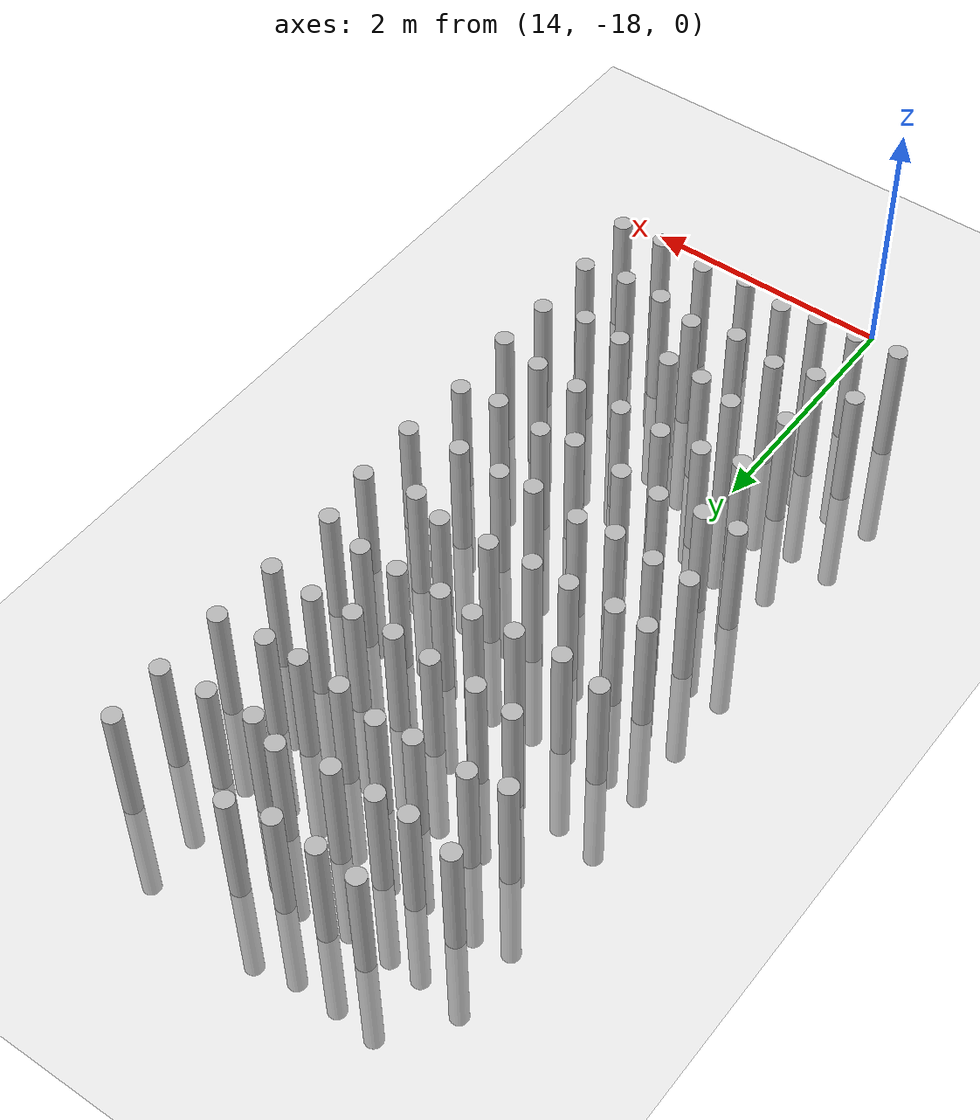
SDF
<sdf version="1.7">
 <world name="farmland_world">
  <model name="ground_plane">
   <static>1</static>
   <link name="link">
    <collision name="collision">
     <geometry><plane><normal>0 0 1</normal><size>40.0 40.0</size></plane></geometry>
     <surface><friction><ode><mu>100</mu><mu2>50</mu2></ode></friction></surface>
    </collision>
    <visual name="visual">
     <cast_shadows>0</cast_shadows>
     <geometry><plane><normal>0 0 1</normal><size>40.0 40.0</size></plane></geometry>
     <material>
      <script><uri>file://media/materials/scripts/gazebo.material</uri><name>Gazebo/Grey</name></script>
     </material>
    </visual>
   </link>
  </model>
  <model name="tree_3_679">
   <static>1</static>
   <link name="link">
    <collision name="collision">
     <geometry><cylinder><radius>0.07</radius><length>2.0</length></cylinder></geometry>
     <surface><friction><ode><mu>100</mu><mu2>50</mu2></ode></friction></surface>
    </collision>
    <visual name="visual">
     <geometry><cylinder><radius>0.07</radius><length>2.0</length></cylinder></geometry>
    </visual>
   </link>
   <pose>13.340808388463973 -11.802308051591254 0 0 0 0</pose>
  </model>
  <model name="tree_3_680">
   <static>1</static>
   <link name="link">
    <collision name="collision">
     <geometry><cylinder><radius>0.07</radius><length>2.0</length></cylinder></geometry>
     <surface><friction><ode><mu>100</mu><mu2>50</mu2></ode></friction></surface>
    </collision>
    <visual name="visual">
     <geometry><cylinder><radius>0.07</radius><length>2.0</length></cylinder></geometry>
    </visual>
   </link>
   <pose>13.346964968816224 -12.384186939239651 0 0 0 0</pose>
  </model>
  <model name="tree_3_682">
   <static>1</static>
   <link name="link">
    <collision name="collision">
     <geometry><cylinder><radius>0.07</radius><length>2.0</length></cylinder></geometry>
     <surface><friction><ode><mu>100</mu><mu2>50</mu2></ode></friction></surface>
    </collision>
    <visual name="visual">
     <geometry><cylinder><radius>0.07</radius><length>2.0</length></cylinder></geometry>
    </visual>
   </link>
   <pose>13.345482359203428 -13.34141882869156 0 0 0 0</pose>
  </model>
  <model name="tree_3_683">
   <static>1</static>
   <link name="link">
    <collision name="collision">
     <geometry><cylinder><radius>0.07</radius><length>2.0</length></cylinder></geometry>
     <surface><friction><ode><mu>100</mu><mu2>50</mu2></ode></friction></surface>
    </collision>
    <visual name="visual">
     <geometry><cylinder><radius>0.07</radius><length>2.0</length></cylinder></geometry>
    </visual>
   </link>
   <pose>13.378544295613926 -13.923046291967678 0 0 0 0</pose>
  </model>
  <model name="tree_3_684">
   <static>1</static>
   <link name="link">
    <collision name="collision">
     <geometry><cylinder><radius>0.07</radius><length>2.0</length></cylinder></geometry>
     <surface><friction><ode><mu>100</mu><mu2>50</mu2></ode></friction></surface>
    </collision>
    <visual name="visual">
     <geometry><cylinder><radius>0.07</radius><length>2.0</length></cylinder></geometry>
    </visual>
   </link>
   <pose>13.375819721077916 -14.408751041805958 0 0 0 0</pose>
  </model>
  <model name="tree_3_685">
   <static>1</static>
   <link name="link">
    <collision name="collision">
     <geometry><cylinder><radius>0.07</radius><length>2.0</length></cylinder></geometry>
     <surface><friction><ode><mu>100</mu><mu2>50</mu2></ode></friction></surface>
    </collision>
    <visual name="visual">
     <geometry><cylinder><radius>0.07</radius><length>2.0</length></cylinder></geometry>
    </visual>
   </link>
   <pose>13.35781908827318 -14.96174279117905 0 0 0 0</pose>
  </model>
  <model name="tree_3_688">
   <static>1</static>
   <link name="link">
    <collision name="collision">
     <geometry><cylinder><radius>0.07</radius><length>2.0</length></cylinder></geometry>
     <surface><friction><ode><mu>100</mu><mu2>50</mu2></ode></friction></surface>
    </collision>
    <visual name="visual">
     <geometry><cylinder><radius>0.07</radius><length>2.0</length></cylinder></geometry>
    </visual>
   </link>
   <pose>13.360110141086356 -16.471997860931683 0 0 0 0</pose>
  </model>
  <model name="tree_3_689">
   <static>1</static>
   <link name="link">
    <collision name="collision">
     <geometry><cylinder><radius>0.07</radius><length>2.0</length></cylinder></geometry>
     <surface><friction><ode><mu>100</mu><mu2>50</mu2></ode></friction></surface>
    </collision>
    <visual name="visual">
     <geometry><cylinder><radius>0.07</radius><length>2.0</length></cylinder></geometry>
    </visual>
   </link>
   <pose>13.344872773263349 -17.044483936957196 0 0 0 0</pose>
  </model>
  <model name="tree_3_708">
   <static>1</static>
   <link name="link">
    <collision name="collision">
     <geometry><cylinder><radius>0.07</radius><length>2.0</length></cylinder></geometry>
     <surface><friction><ode><mu>100</mu><mu2>50</mu2></ode></friction></surface>
    </collision>
    <visual name="visual">
     <geometry><cylinder><radius>0.07</radius><length>2.0</length></cylinder></geometry>
    </visual>
   </link>
   <pose>13.690322395746872 -11.335133299749751 0 0 0 0</pose>
  </model>
  <model name="tree_3_709">
   <static>1</static>
   <link name="link">
    <collision name="collision">
     <geometry><cylinder><radius>0.07</radius><length>2.0</length></cylinder></geometry>
     <surface><friction><ode><mu>100</mu><mu2>50</mu2></ode></friction></surface>
    </collision>
    <visual name="visual">
     <geometry><cylinder><radius>0.07</radius><length>2.0</length></cylinder></geometry>
    </visual>
   </link>
   <pose>13.7145491624177 -11.863503087777305 0 0 0 0</pose>
  </model>
  <model name="tree_3_710">
   <static>1</static>
   <link name="link">
    <collision name="collision">
     <geometry><cylinder><radius>0.07</radius><length>2.0</length></cylinder></geometry>
     <surface><friction><ode><mu>100</mu><mu2>50</mu2></ode></friction></surface>
    </collision>
    <visual name="visual">
     <geometry><cylinder><radius>0.07</radius><length>2.0</length></cylinder></geometry>
    </visual>
   </link>
   <pose>13.625132217552395 -12.32689403428545 0 0 0 0</pose>
  </model>
  <model name="tree_3_711">
   <static>1</static>
   <link name="link">
    <collision name="collision">
     <geometry><cylinder><radius>0.07</radius><length>2.0</length></cylinder></geometry>
     <surface><friction><ode><mu>100</mu><mu2>50</mu2></ode></friction></surface>
    </collision>
    <visual name="visual">
     <geometry><cylinder><radius>0.07</radius><length>2.0</length></cylinder></geometry>
    </visual>
   </link>
   <pose>13.667958246962316 -12.850047787302008 0 0 0 0</pose>
  </model>
  <model name="tree_3_712">
   <static>1</static>
   <link name="link">
    <collision name="collision">
     <geometry><cylinder><radius>0.07</radius><length>2.0</length></cylinder></geometry>
     <surface><friction><ode><mu>100</mu><mu2>50</mu2></ode></friction></surface>
    </collision>
    <visual name="visual">
     <geometry><cylinder><radius>0.07</radius><length>2.0</length></cylinder></geometry>
    </visual>
   </link>
   <pose>13.681311029742494 -13.400819610923499 0 0 0 0</pose>
  </model>
  <model name="tree_3_713">
   <static>1</static>
   <link name="link">
    <collision name="collision">
     <geometry><cylinder><radius>0.07</radius><length>2.0</length></cylinder></geometry>
     <surface><friction><ode><mu>100</mu><mu2>50</mu2></ode></friction></surface>
    </collision>
    <visual name="visual">
     <geometry><cylinder><radius>0.07</radius><length>2.0</length></cylinder></geometry>
    </visual>
   </link>
   <pose>13.639194872709846 -13.9288248203039 0 0 0 0</pose>
  </model>
  <model name="tree_3_714">
   <static>1</static>
   <link name="link">
    <collision name="collision">
     <geometry><cylinder><radius>0.07</radius><length>2.0</length></cylinder></geometry>
     <surface><friction><ode><mu>100</mu><mu2>50</mu2></ode></friction></surface>
    </collision>
    <visual name="visual">
     <geometry><cylinder><radius>0.07</radius><length>2.0</length></cylinder></geometry>
    </visual>
   </link>
   <pose>13.66821683657058 -14.411277963981405 0 0 0 0</pose>
  </model>
  <model name="tree_3_715">
   <static>1</static>
   <link name="link">
    <collision name="collision">
     <geometry><cylinder><radius>0.07</radius><length>2.0</length></cylinder></geometry>
     <surface><friction><ode><mu>100</mu><mu2>50</mu2></ode></friction></surface>
    </collision>
    <visual name="visual">
     <geometry><cylinder><radius>0.07</radius><length>2.0</length></cylinder></geometry>
    </visual>
   </link>
   <pose>13.626857726866666 -14.949296165769415 0 0 0 0</pose>
  </model>
  <model name="tree_3_716">
   <static>1</static>
   <link name="link">
    <collision name="collision">
     <geometry><cylinder><radius>0.07</radius><length>2.0</length></cylinder></geometry>
     <surface><friction><ode><mu>100</mu><mu2>50</mu2></ode></friction></surface>
    </collision>
    <visual name="visual">
     <geometry><cylinder><radius>0.07</radius><length>2.0</length></cylinder></geometry>
    </visual>
   </link>
   <pose>13.661842453812733 -15.484964040059724 0 0 0 0</pose>
  </model>
  <model name="tree_3_717">
   <static>1</static>
   <link name="link">
    <collision name="collision">
     <geometry><cylinder><radius>0.07</radius><length>2.0</length></cylinder></geometry>
     <surface><friction><ode><mu>100</mu><mu2>50</mu2></ode></friction></surface>
    </collision>
    <visual name="visual">
     <geometry><cylinder><radius>0.07</radius><length>2.0</length></cylinder></geometry>
    </visual>
   </link>
   <pose>13.634651554343582 -16.012291647399042 0 0 0 0</pose>
  </model>
  <model name="tree_3_718">
   <static>1</static>
   <link name="link">
    <collision name="collision">
     <geometry><cylinder><radius>0.07</radius><length>2.0</length></cylinder></geometry>
     <surface><friction><ode><mu>100</mu><mu2>50</mu2></ode></friction></surface>
    </collision>
    <visual name="visual">
     <geometry><cylinder><radius>0.07</radius><length>2.0</length></cylinder></geometry>
    </visual>
   </link>
   <pose>13.704191779472701 -16.508927564356725 0 0 0 0</pose>
  </model>
  <model name="tree_3_719">
   <static>1</static>
   <link name="link">
    <collision name="collision">
     <geometry><cylinder><radius>0.07</radius><length>2.0</length></cylinder></geometry>
     <surface><friction><ode><mu>100</mu><mu2>50</mu2></ode></friction></surface>
    </collision>
    <visual name="visual">
     <geometry><cylinder><radius>0.07</radius><length>2.0</length></cylinder></geometry>
    </visual>
   </link>
   <pose>13.674314259004587 -17.012017386490427 0 0 0 0</pose>
  </model>
  <model name="tree_3_738">
   <static>1</static>
   <link name="link">
    <collision name="collision">
     <geometry><cylinder><radius>0.07</radius><length>2.0</length></cylinder></geometry>
     <surface><friction><ode><mu>100</mu><mu2>50</mu2></ode></friction></surface>
    </collision>
    <visual name="visual">
     <geometry><cylinder><radius>0.07</radius><length>2.0</length></cylinder></geometry>
    </visual>
   </link>
   <pose>14.020599243994901 -11.356814597097658 0 0 0 0</pose>
  </model>
  <model name="tree_3_739">
   <static>1</static>
   <link name="link">
    <collision name="collision">
     <geometry><cylinder><radius>0.07</radius><length>2.0</length></cylinder></geometry>
     <surface><friction><ode><mu>100</mu><mu2>50</mu2></ode></friction></surface>
    </collision>
    <visual name="visual">
     <geometry><cylinder><radius>0.07</radius><length>2.0</length></cylinder></geometry>
    </visual>
   </link>
   <pose>13.975164255484843 -11.861452776593293 0 0 0 0</pose>
  </model>
  <model name="tree_3_740">
   <static>1</static>
   <link name="link">
    <collision name="collision">
     <geometry><cylinder><radius>0.07</radius><length>2.0</length></cylinder></geometry>
     <surface><friction><ode><mu>100</mu><mu2>50</mu2></ode></friction></surface>
    </collision>
    <visual name="visual">
     <geometry><cylinder><radius>0.07</radius><length>2.0</length></cylinder></geometry>
    </visual>
   </link>
   <pose>14.04906870758376 -12.327650290366883 0 0 0 0</pose>
  </model>
  <model name="tree_3_741">
   <static>1</static>
   <link name="link">
    <collision name="collision">
     <geometry><cylinder><radius>0.07</radius><length>2.0</length></cylinder></geometry>
     <surface><friction><ode><mu>100</mu><mu2>50</mu2></ode></friction></surface>
    </collision>
    <visual name="visual">
     <geometry><cylinder><radius>0.07</radius><length>2.0</length></cylinder></geometry>
    </visual>
   </link>
   <pose>13.97930550759932 -12.880502851616177 0 0 0 0</pose>
  </model>
  <model name="tree_3_742">
   <static>1</static>
   <link name="link">
    <collision name="collision">
     <geometry><cylinder><radius>0.07</radius><length>2.0</length></cylinder></geometry>
     <surface><friction><ode><mu>100</mu><mu2>50</mu2></ode></friction></surface>
    </collision>
    <visual name="visual">
     <geometry><cylinder><radius>0.07</radius><length>2.0</length></cylinder></geometry>
    </visual>
   </link>
   <pose>14.044277784249973 -13.376284610547915 0 0 0 0</pose>
  </model>
  <model name="tree_3_743">
   <static>1</static>
   <link name="link">
    <collision name="collision">
     <geometry><cylinder><radius>0.07</radius><length>2.0</length></cylinder></geometry>
     <surface><friction><ode><mu>100</mu><mu2>50</mu2></ode></friction></surface>
    </collision>
    <visual name="visual">
     <geometry><cylinder><radius>0.07</radius><length>2.0</length></cylinder></geometry>
    </visual>
   </link>
   <pose>13.997188507418489 -13.912777206543414 0 0 0 0</pose>
  </model>
  <model name="tree_3_744">
   <static>1</static>
   <link name="link">
    <collision name="collision">
     <geometry><cylinder><radius>0.07</radius><length>2.0</length></cylinder></geometry>
     <surface><friction><ode><mu>100</mu><mu2>50</mu2></ode></friction></surface>
    </collision>
    <visual name="visual">
     <geometry><cylinder><radius>0.07</radius><length>2.0</length></cylinder></geometry>
    </visual>
   </link>
   <pose>14.000015403870878 -14.447831501928562 0 0 0 0</pose>
  </model>
  <model name="tree_3_745">
   <static>1</static>
   <link name="link">
    <collision name="collision">
     <geometry><cylinder><radius>0.07</radius><length>2.0</length></cylinder></geometry>
     <surface><friction><ode><mu>100</mu><mu2>50</mu2></ode></friction></surface>
    </collision>
    <visual name="visual">
     <geometry><cylinder><radius>0.07</radius><length>2.0</length></cylinder></geometry>
    </visual>
   </link>
   <pose>13.962936307197586 -14.906926339266613 0 0 0 0</pose>
  </model>
  <model name="tree_3_746">
   <static>1</static>
   <link name="link">
    <collision name="collision">
     <geometry><cylinder><radius>0.07</radius><length>2.0</length></cylinder></geometry>
     <surface><friction><ode><mu>100</mu><mu2>50</mu2></ode></friction></surface>
    </collision>
    <visual name="visual">
     <geometry><cylinder><radius>0.07</radius><length>2.0</length></cylinder></geometry>
    </visual>
   </link>
   <pose>13.9658091526255 -15.43068547409144 0 0 0 0</pose>
  </model>
  <model name="tree_3_747">
   <static>1</static>
   <link name="link">
    <collision name="collision">
     <geometry><cylinder><radius>0.07</radius><length>2.0</length></cylinder></geometry>
     <surface><friction><ode><mu>100</mu><mu2>50</mu2></ode></friction></surface>
    </collision>
    <visual name="visual">
     <geometry><cylinder><radius>0.07</radius><length>2.0</length></cylinder></geometry>
    </visual>
   </link>
   <pose>14.046832721232201 -15.929247633756455 0 0 0 0</pose>
  </model>
  <model name="tree_3_748">
   <static>1</static>
   <link name="link">
    <collision name="collision">
     <geometry><cylinder><radius>0.07</radius><length>2.0</length></cylinder></geometry>
     <surface><friction><ode><mu>100</mu><mu2>50</mu2></ode></friction></surface>
    </collision>
    <visual name="visual">
     <geometry><cylinder><radius>0.07</radius><length>2.0</length></cylinder></geometry>
    </visual>
   </link>
   <pose>14.010752984765315 -16.4344264980234 0 0 0 0</pose>
  </model>
  <model name="tree_3_749">
   <static>1</static>
   <link name="link">
    <collision name="collision">
     <geometry><cylinder><radius>0.07</radius><length>2.0</length></cylinder></geometry>
     <surface><friction><ode><mu>100</mu><mu2>50</mu2></ode></friction></surface>
    </collision>
    <visual name="visual">
     <geometry><cylinder><radius>0.07</radius><length>2.0</length></cylinder></geometry>
    </visual>
   </link>
   <pose>13.99368294256494 -17.002265579366224 0 0 0 0</pose>
  </model>
  <model name="tree_3_768">
   <static>1</static>
   <link name="link">
    <collision name="collision">
     <geometry><cylinder><radius>0.07</radius><length>2.0</length></cylinder></geometry>
     <surface><friction><ode><mu>100</mu><mu2>50</mu2></ode></friction></surface>
    </collision>
    <visual name="visual">
     <geometry><cylinder><radius>0.07</radius><length>2.0</length></cylinder></geometry>
    </visual>
   </link>
   <pose>14.368891126838118 -11.35951530188054 0 0 0 0</pose>
  </model>
  <model name="tree_3_769">
   <static>1</static>
   <link name="link">
    <collision name="collision">
     <geometry><cylinder><radius>0.07</radius><length>2.0</length></cylinder></geometry>
     <surface><friction><ode><mu>100</mu><mu2>50</mu2></ode></friction></surface>
    </collision>
    <visual name="visual">
     <geometry><cylinder><radius>0.07</radius><length>2.0</length></cylinder></geometry>
    </visual>
   </link>
   <pose>14.318561382880015 -11.854351910925638 0 0 0 0</pose>
  </model>
  <model name="tree_3_770">
   <static>1</static>
   <link name="link">
    <collision name="collision">
     <geometry><cylinder><radius>0.07</radius><length>2.0</length></cylinder></geometry>
     <surface><friction><ode><mu>100</mu><mu2>50</mu2></ode></friction></surface>
    </collision>
    <visual name="visual">
     <geometry><cylinder><radius>0.07</radius><length>2.0</length></cylinder></geometry>
    </visual>
   </link>
   <pose>14.330449484726984 -12.303503526698902 0 0 0 0</pose>
  </model>
  <model name="tree_3_771">
   <static>1</static>
   <link name="link">
    <collision name="collision">
     <geometry><cylinder><radius>0.07</radius><length>2.0</length></cylinder></geometry>
     <surface><friction><ode><mu>100</mu><mu2>50</mu2></ode></friction></surface>
    </collision>
    <visual name="visual">
     <geometry><cylinder><radius>0.07</radius><length>2.0</length></cylinder></geometry>
    </visual>
   </link>
   <pose>14.348545516643421 -12.882606116251186 0 0 0 0</pose>
  </model>
  <model name="tree_3_772">
   <static>1</static>
   <link name="link">
    <collision name="collision">
     <geometry><cylinder><radius>0.07</radius><length>2.0</length></cylinder></geometry>
     <surface><friction><ode><mu>100</mu><mu2>50</mu2></ode></friction></surface>
    </collision>
    <visual name="visual">
     <geometry><cylinder><radius>0.07</radius><length>2.0</length></cylinder></geometry>
    </visual>
   </link>
   <pose>14.355555445631856 -13.336850170649704 0 0 0 0</pose>
  </model>
  <model name="tree_3_773">
   <static>1</static>
   <link name="link">
    <collision name="collision">
     <geometry><cylinder><radius>0.07</radius><length>2.0</length></cylinder></geometry>
     <surface><friction><ode><mu>100</mu><mu2>50</mu2></ode></friction></surface>
    </collision>
    <visual name="visual">
     <geometry><cylinder><radius>0.07</radius><length>2.0</length></cylinder></geometry>
    </visual>
   </link>
   <pose>14.294242566939918 -13.911809675395093 0 0 0 0</pose>
  </model>
  <model name="tree_3_774">
   <static>1</static>
   <link name="link">
    <collision name="collision">
     <geometry><cylinder><radius>0.07</radius><length>2.0</length></cylinder></geometry>
     <surface><friction><ode><mu>100</mu><mu2>50</mu2></ode></friction></surface>
    </collision>
    <visual name="visual">
     <geometry><cylinder><radius>0.07</radius><length>2.0</length></cylinder></geometry>
    </visual>
   </link>
   <pose>14.286333727072366 -14.4107367613939 0 0 0 0</pose>
  </model>
  <model name="tree_3_775">
   <static>1</static>
   <link name="link">
    <collision name="collision">
     <geometry><cylinder><radius>0.07</radius><length>2.0</length></cylinder></geometry>
     <surface><friction><ode><mu>100</mu><mu2>50</mu2></ode></friction></surface>
    </collision>
    <visual name="visual">
     <geometry><cylinder><radius>0.07</radius><length>2.0</length></cylinder></geometry>
    </visual>
   </link>
   <pose>14.285729926156298 -14.927197109347155 0 0 0 0</pose>
  </model>
  <model name="tree_3_776">
   <static>1</static>
   <link name="link">
    <collision name="collision">
     <geometry><cylinder><radius>0.07</radius><length>2.0</length></cylinder></geometry>
     <surface><friction><ode><mu>100</mu><mu2>50</mu2></ode></friction></surface>
    </collision>
    <visual name="visual">
     <geometry><cylinder><radius>0.07</radius><length>2.0</length></cylinder></geometry>
    </visual>
   </link>
   <pose>14.284523236771356 -15.402466547197408 0 0 0 0</pose>
  </model>
  <model name="tree_3_777">
   <static>1</static>
   <link name="link">
    <collision name="collision">
     <geometry><cylinder><radius>0.07</radius><length>2.0</length></cylinder></geometry>
     <surface><friction><ode><mu>100</mu><mu2>50</mu2></ode></friction></surface>
    </collision>
    <visual name="visual">
     <geometry><cylinder><radius>0.07</radius><length>2.0</length></cylinder></geometry>
    </visual>
   </link>
   <pose>14.342697768522621 -16.002111434990095 0 0 0 0</pose>
  </model>
  <model name="tree_3_778">
   <static>1</static>
   <link name="link">
    <collision name="collision">
     <geometry><cylinder><radius>0.07</radius><length>2.0</length></cylinder></geometry>
     <surface><friction><ode><mu>100</mu><mu2>50</mu2></ode></friction></surface>
    </collision>
    <visual name="visual">
     <geometry><cylinder><radius>0.07</radius><length>2.0</length></cylinder></geometry>
    </visual>
   </link>
   <pose>14.375083099786865 -16.512317901181483 0 0 0 0</pose>
  </model>
  <model name="tree_3_779">
   <static>1</static>
   <link name="link">
    <collision name="collision">
     <geometry><cylinder><radius>0.07</radius><length>2.0</length></cylinder></geometry>
     <surface><friction><ode><mu>100</mu><mu2>50</mu2></ode></friction></surface>
    </collision>
    <visual name="visual">
     <geometry><cylinder><radius>0.07</radius><length>2.0</length></cylinder></geometry>
    </visual>
   </link>
   <pose>14.2800741925875 -16.960295078237614 0 0 0 0</pose>
  </model>
  <model name="tree_3_798">
   <static>1</static>
   <link name="link">
    <collision name="collision">
     <geometry><cylinder><radius>0.07</radius><length>2.0</length></cylinder></geometry>
     <surface><friction><ode><mu>100</mu><mu2>50</mu2></ode></friction></surface>
    </collision>
    <visual name="visual">
     <geometry><cylinder><radius>0.07</radius><length>2.0</length></cylinder></geometry>
    </visual>
   </link>
   <pose>14.68154279527723 -11.281733801631614 0 0 0 0</pose>
  </model>
  <model name="tree_3_799">
   <static>1</static>
   <link name="link">
    <collision name="collision">
     <geometry><cylinder><radius>0.07</radius><length>2.0</length></cylinder></geometry>
     <surface><friction><ode><mu>100</mu><mu2>50</mu2></ode></friction></surface>
    </collision>
    <visual name="visual">
     <geometry><cylinder><radius>0.07</radius><length>2.0</length></cylinder></geometry>
    </visual>
   </link>
   <pose>14.7075414646448 -11.784966463638641 0 0 0 0</pose>
  </model>
  <model name="tree_3_800">
   <static>1</static>
   <link name="link">
    <collision name="collision">
     <geometry><cylinder><radius>0.07</radius><length>2.0</length></cylinder></geometry>
     <surface><friction><ode><mu>100</mu><mu2>50</mu2></ode></friction></surface>
    </collision>
    <visual name="visual">
     <geometry><cylinder><radius>0.07</radius><length>2.0</length></cylinder></geometry>
    </visual>
   </link>
   <pose>14.676019323064615 -12.369868720114962 0 0 0 0</pose>
  </model>
  <model name="tree_3_801">
   <static>1</static>
   <link name="link">
    <collision name="collision">
     <geometry><cylinder><radius>0.07</radius><length>2.0</length></cylinder></geometry>
     <surface><friction><ode><mu>100</mu><mu2>50</mu2></ode></friction></surface>
    </collision>
    <visual name="visual">
     <geometry><cylinder><radius>0.07</radius><length>2.0</length></cylinder></geometry>
    </visual>
   </link>
   <pose>14.667202198646908 -12.906893167900634 0 0 0 0</pose>
  </model>
  <model name="tree_3_802">
   <static>1</static>
   <link name="link">
    <collision name="collision">
     <geometry><cylinder><radius>0.07</radius><length>2.0</length></cylinder></geometry>
     <surface><friction><ode><mu>100</mu><mu2>50</mu2></ode></friction></surface>
    </collision>
    <visual name="visual">
     <geometry><cylinder><radius>0.07</radius><length>2.0</length></cylinder></geometry>
    </visual>
   </link>
   <pose>14.632041613340634 -13.355191984838271 0 0 0 0</pose>
  </model>
  <model name="tree_3_803">
   <static>1</static>
   <link name="link">
    <collision name="collision">
     <geometry><cylinder><radius>0.07</radius><length>2.0</length></cylinder></geometry>
     <surface><friction><ode><mu>100</mu><mu2>50</mu2></ode></friction></surface>
    </collision>
    <visual name="visual">
     <geometry><cylinder><radius>0.07</radius><length>2.0</length></cylinder></geometry>
    </visual>
   </link>
   <pose>14.632229987834856 -13.877326595204476 0 0 0 0</pose>
  </model>
  <model name="tree_3_804">
   <static>1</static>
   <link name="link">
    <collision name="collision">
     <geometry><cylinder><radius>0.07</radius><length>2.0</length></cylinder></geometry>
     <surface><friction><ode><mu>100</mu><mu2>50</mu2></ode></friction></surface>
    </collision>
    <visual name="visual">
     <geometry><cylinder><radius>0.07</radius><length>2.0</length></cylinder></geometry>
    </visual>
   </link>
   <pose>14.684870878377028 -14.456297393006867 0 0 0 0</pose>
  </model>
  <model name="tree_3_805">
   <static>1</static>
   <link name="link">
    <collision name="collision">
     <geometry><cylinder><radius>0.07</radius><length>2.0</length></cylinder></geometry>
     <surface><friction><ode><mu>100</mu><mu2>50</mu2></ode></friction></surface>
    </collision>
    <visual name="visual">
     <geometry><cylinder><radius>0.07</radius><length>2.0</length></cylinder></geometry>
    </visual>
   </link>
   <pose>14.70963364553053 -14.974350861895728 0 0 0 0</pose>
  </model>
  <model name="tree_3_806">
   <static>1</static>
   <link name="link">
    <collision name="collision">
     <geometry><cylinder><radius>0.07</radius><length>2.0</length></cylinder></geometry>
     <surface><friction><ode><mu>100</mu><mu2>50</mu2></ode></friction></surface>
    </collision>
    <visual name="visual">
     <geometry><cylinder><radius>0.07</radius><length>2.0</length></cylinder></geometry>
    </visual>
   </link>
   <pose>14.632824371738865 -15.418738043325 0 0 0 0</pose>
  </model>
  <model name="tree_3_807">
   <static>1</static>
   <link name="link">
    <collision name="collision">
     <geometry><cylinder><radius>0.07</radius><length>2.0</length></cylinder></geometry>
     <surface><friction><ode><mu>100</mu><mu2>50</mu2></ode></friction></surface>
    </collision>
    <visual name="visual">
     <geometry><cylinder><radius>0.07</radius><length>2.0</length></cylinder></geometry>
    </visual>
   </link>
   <pose>14.631625083376306 -16.01544498557388 0 0 0 0</pose>
  </model>
  <model name="tree_3_808">
   <static>1</static>
   <link name="link">
    <collision name="collision">
     <geometry><cylinder><radius>0.07</radius><length>2.0</length></cylinder></geometry>
     <surface><friction><ode><mu>100</mu><mu2>50</mu2></ode></friction></surface>
    </collision>
    <visual name="visual">
     <geometry><cylinder><radius>0.07</radius><length>2.0</length></cylinder></geometry>
    </visual>
   </link>
   <pose>14.717187148351853 -16.435260349926754 0 0 0 0</pose>
  </model>
  <model name="tree_3_809">
   <static>1</static>
   <link name="link">
    <collision name="collision">
     <geometry><cylinder><radius>0.07</radius><length>2.0</length></cylinder></geometry>
     <surface><friction><ode><mu>100</mu><mu2>50</mu2></ode></friction></surface>
    </collision>
    <visual name="visual">
     <geometry><cylinder><radius>0.07</radius><length>2.0</length></cylinder></geometry>
    </visual>
   </link>
   <pose>14.628983852179028 -17.029159808631714 0 0 0 0</pose>
  </model>
  <model name="tree_3_829">
   <static>1</static>
   <link name="link">
    <collision name="collision">
     <geometry><cylinder><radius>0.07</radius><length>2.0</length></cylinder></geometry>
     <surface><friction><ode><mu>100</mu><mu2>50</mu2></ode></friction></surface>
    </collision>
    <visual name="visual">
     <geometry><cylinder><radius>0.07</radius><length>2.0</length></cylinder></geometry>
    </visual>
   </link>
   <pose>14.955673507575925 -11.867409691922742 0 0 0 0</pose>
  </model>
  <model name="tree_3_830">
   <static>1</static>
   <link name="link">
    <collision name="collision">
     <geometry><cylinder><radius>0.07</radius><length>2.0</length></cylinder></geometry>
     <surface><friction><ode><mu>100</mu><mu2>50</mu2></ode></friction></surface>
    </collision>
    <visual name="visual">
     <geometry><cylinder><radius>0.07</radius><length>2.0</length></cylinder></geometry>
    </visual>
   </link>
   <pose>15.024986284177967 -12.384447781668749 0 0 0 0</pose>
  </model>
  <model name="tree_3_831">
   <static>1</static>
   <link name="link">
    <collision name="collision">
     <geometry><cylinder><radius>0.07</radius><length>2.0</length></cylinder></geometry>
     <surface><friction><ode><mu>100</mu><mu2>50</mu2></ode></friction></surface>
    </collision>
    <visual name="visual">
     <geometry><cylinder><radius>0.07</radius><length>2.0</length></cylinder></geometry>
    </visual>
   </link>
   <pose>14.98161138716735 -12.87733817100035 0 0 0 0</pose>
  </model>
  <model name="tree_3_832">
   <static>1</static>
   <link name="link">
    <collision name="collision">
     <geometry><cylinder><radius>0.07</radius><length>2.0</length></cylinder></geometry>
     <surface><friction><ode><mu>100</mu><mu2>50</mu2></ode></friction></surface>
    </collision>
    <visual name="visual">
     <geometry><cylinder><radius>0.07</radius><length>2.0</length></cylinder></geometry>
    </visual>
   </link>
   <pose>14.97951014678766 -13.336292956078381 0 0 0 0</pose>
  </model>
  <model name="tree_3_833">
   <static>1</static>
   <link name="link">
    <collision name="collision">
     <geometry><cylinder><radius>0.07</radius><length>2.0</length></cylinder></geometry>
     <surface><friction><ode><mu>100</mu><mu2>50</mu2></ode></friction></surface>
    </collision>
    <visual name="visual">
     <geometry><cylinder><radius>0.07</radius><length>2.0</length></cylinder></geometry>
    </visual>
   </link>
   <pose>15.023872415907594 -13.85260018142556 0 0 0 0</pose>
  </model>
  <model name="tree_3_834">
   <static>1</static>
   <link name="link">
    <collision name="collision">
     <geometry><cylinder><radius>0.07</radius><length>2.0</length></cylinder></geometry>
     <surface><friction><ode><mu>100</mu><mu2>50</mu2></ode></friction></surface>
    </collision>
    <visual name="visual">
     <geometry><cylinder><radius>0.07</radius><length>2.0</length></cylinder></geometry>
    </visual>
   </link>
   <pose>14.955012169996442 -14.432064671946074 0 0 0 0</pose>
  </model>
  <model name="tree_3_835">
   <static>1</static>
   <link name="link">
    <collision name="collision">
     <geometry><cylinder><radius>0.07</radius><length>2.0</length></cylinder></geometry>
     <surface><friction><ode><mu>100</mu><mu2>50</mu2></ode></friction></surface>
    </collision>
    <visual name="visual">
     <geometry><cylinder><radius>0.07</radius><length>2.0</length></cylinder></geometry>
    </visual>
   </link>
   <pose>14.964530618583046 -14.916525232752548 0 0 0 0</pose>
  </model>
  <model name="tree_3_836">
   <static>1</static>
   <link name="link">
    <collision name="collision">
     <geometry><cylinder><radius>0.07</radius><length>2.0</length></cylinder></geometry>
     <surface><friction><ode><mu>100</mu><mu2>50</mu2></ode></friction></surface>
    </collision>
    <visual name="visual">
     <geometry><cylinder><radius>0.07</radius><length>2.0</length></cylinder></geometry>
    </visual>
   </link>
   <pose>15.00336407563967 -15.405099336814684 0 0 0 0</pose>
  </model>
  <model name="tree_3_837">
   <static>1</static>
   <link name="link">
    <collision name="collision">
     <geometry><cylinder><radius>0.07</radius><length>2.0</length></cylinder></geometry>
     <surface><friction><ode><mu>100</mu><mu2>50</mu2></ode></friction></surface>
    </collision>
    <visual name="visual">
     <geometry><cylinder><radius>0.07</radius><length>2.0</length></cylinder></geometry>
    </visual>
   </link>
   <pose>15.033102597328567 -15.982076280014134 0 0 0 0</pose>
  </model>
  <model name="tree_3_838">
   <static>1</static>
   <link name="link">
    <collision name="collision">
     <geometry><cylinder><radius>0.07</radius><length>2.0</length></cylinder></geometry>
     <surface><friction><ode><mu>100</mu><mu2>50</mu2></ode></friction></surface>
    </collision>
    <visual name="visual">
     <geometry><cylinder><radius>0.07</radius><length>2.0</length></cylinder></geometry>
    </visual>
   </link>
   <pose>15.042135221845049 -16.520227377193745 0 0 0 0</pose>
  </model>
  <model name="tree_3_839">
   <static>1</static>
   <link name="link">
    <collision name="collision">
     <geometry><cylinder><radius>0.07</radius><length>2.0</length></cylinder></geometry>
     <surface><friction><ode><mu>100</mu><mu2>50</mu2></ode></friction></surface>
    </collision>
    <visual name="visual">
     <geometry><cylinder><radius>0.07</radius><length>2.0</length></cylinder></geometry>
    </visual>
   </link>
   <pose>14.974447104708593 -16.97454026586856 0 0 0 0</pose>
  </model>
  <model name="tree_3_859">
   <static>1</static>
   <link name="link">
    <collision name="collision">
     <geometry><cylinder><radius>0.07</radius><length>2.0</length></cylinder></geometry>
     <surface><friction><ode><mu>100</mu><mu2>50</mu2></ode></friction></surface>
    </collision>
    <visual name="visual">
     <geometry><cylinder><radius>0.07</radius><length>2.0</length></cylinder></geometry>
    </visual>
   </link>
   <pose>15.324470136267706 -11.840376913350616 0 0 0 0</pose>
  </model>
  <model name="tree_3_860">
   <static>1</static>
   <link name="link">
    <collision name="collision">
     <geometry><cylinder><radius>0.07</radius><length>2.0</length></cylinder></geometry>
     <surface><friction><ode><mu>100</mu><mu2>50</mu2></ode></friction></surface>
    </collision>
    <visual name="visual">
     <geometry><cylinder><radius>0.07</radius><length>2.0</length></cylinder></geometry>
    </visual>
   </link>
   <pose>15.305227363232508 -12.383654506984925 0 0 0 0</pose>
  </model>
  <model name="tree_3_861">
   <static>1</static>
   <link name="link">
    <collision name="collision">
     <geometry><cylinder><radius>0.07</radius><length>2.0</length></cylinder></geometry>
     <surface><friction><ode><mu>100</mu><mu2>50</mu2></ode></friction></surface>
    </collision>
    <visual name="visual">
     <geometry><cylinder><radius>0.07</radius><length>2.0</length></cylinder></geometry>
    </visual>
   </link>
   <pose>15.295270767223345 -12.838839881775229 0 0 0 0</pose>
  </model>
  <model name="tree_3_862">
   <static>1</static>
   <link name="link">
    <collision name="collision">
     <geometry><cylinder><radius>0.07</radius><length>2.0</length></cylinder></geometry>
     <surface><friction><ode><mu>100</mu><mu2>50</mu2></ode></friction></surface>
    </collision>
    <visual name="visual">
     <geometry><cylinder><radius>0.07</radius><length>2.0</length></cylinder></geometry>
    </visual>
   </link>
   <pose>15.29292843470509 -13.34036117969916 0 0 0 0</pose>
  </model>
  <model name="tree_3_863">
   <static>1</static>
   <link name="link">
    <collision name="collision">
     <geometry><cylinder><radius>0.07</radius><length>2.0</length></cylinder></geometry>
     <surface><friction><ode><mu>100</mu><mu2>50</mu2></ode></friction></surface>
    </collision>
    <visual name="visual">
     <geometry><cylinder><radius>0.07</radius><length>2.0</length></cylinder></geometry>
    </visual>
   </link>
   <pose>15.293223870591184 -13.941431512266671 0 0 0 0</pose>
  </model>
  <model name="tree_3_864">
   <static>1</static>
   <link name="link">
    <collision name="collision">
     <geometry><cylinder><radius>0.07</radius><length>2.0</length></cylinder></geometry>
     <surface><friction><ode><mu>100</mu><mu2>50</mu2></ode></friction></surface>
    </collision>
    <visual name="visual">
     <geometry><cylinder><radius>0.07</radius><length>2.0</length></cylinder></geometry>
    </visual>
   </link>
   <pose>15.31098173598636 -14.443666814655122 0 0 0 0</pose>
  </model>
  <model name="tree_3_865">
   <static>1</static>
   <link name="link">
    <collision name="collision">
     <geometry><cylinder><radius>0.07</radius><length>2.0</length></cylinder></geometry>
     <surface><friction><ode><mu>100</mu><mu2>50</mu2></ode></friction></surface>
    </collision>
    <visual name="visual">
     <geometry><cylinder><radius>0.07</radius><length>2.0</length></cylinder></geometry>
    </visual>
   </link>
   <pose>15.361555746575434 -14.964316889736157 0 0 0 0</pose>
  </model>
  <model name="tree_3_866">
   <static>1</static>
   <link name="link">
    <collision name="collision">
     <geometry><cylinder><radius>0.07</radius><length>2.0</length></cylinder></geometry>
     <surface><friction><ode><mu>100</mu><mu2>50</mu2></ode></friction></surface>
    </collision>
    <visual name="visual">
     <geometry><cylinder><radius>0.07</radius><length>2.0</length></cylinder></geometry>
    </visual>
   </link>
   <pose>15.355977449600568 -15.422479800188613 0 0 0 0</pose>
  </model>
  <model name="tree_3_867">
   <static>1</static>
   <link name="link">
    <collision name="collision">
     <geometry><cylinder><radius>0.07</radius><length>2.0</length></cylinder></geometry>
     <surface><friction><ode><mu>100</mu><mu2>50</mu2></ode></friction></surface>
    </collision>
    <visual name="visual">
     <geometry><cylinder><radius>0.07</radius><length>2.0</length></cylinder></geometry>
    </visual>
   </link>
   <pose>15.358162781182706 -16.011241965232088 0 0 0 0</pose>
  </model>
  <model name="tree_3_868">
   <static>1</static>
   <link name="link">
    <collision name="collision">
     <geometry><cylinder><radius>0.07</radius><length>2.0</length></cylinder></geometry>
     <surface><friction><ode><mu>100</mu><mu2>50</mu2></ode></friction></surface>
    </collision>
    <visual name="visual">
     <geometry><cylinder><radius>0.07</radius><length>2.0</length></cylinder></geometry>
    </visual>
   </link>
   <pose>15.358262872246659 -16.528795460505442 0 0 0 0</pose>
  </model>
  <model name="tree_3_869">
   <static>1</static>
   <link name="link">
    <collision name="collision">
     <geometry><cylinder><radius>0.07</radius><length>2.0</length></cylinder></geometry>
     <surface><friction><ode><mu>100</mu><mu2>50</mu2></ode></friction></surface>
    </collision>
    <visual name="visual">
     <geometry><cylinder><radius>0.07</radius><length>2.0</length></cylinder></geometry>
    </visual>
   </link>
   <pose>15.376177163007496 -17.02447475542132 0 0 0 0</pose>
  </model>
  <model name="tree_3_888">
   <static>1</static>
   <link name="link">
    <collision name="collision">
     <geometry><cylinder><radius>0.07</radius><length>2.0</length></cylinder></geometry>
     <surface><friction><ode><mu>100</mu><mu2>50</mu2></ode></friction></surface>
    </collision>
    <visual name="visual">
     <geometry><cylinder><radius>0.07</radius><length>2.0</length></cylinder></geometry>
    </visual>
   </link>
   <pose>15.666429846822057 -11.341513434961117 0 0 0 0</pose>
  </model>
  <model name="tree_3_889">
   <static>1</static>
   <link name="link">
    <collision name="collision">
     <geometry><cylinder><radius>0.07</radius><length>2.0</length></cylinder></geometry>
     <surface><friction><ode><mu>100</mu><mu2>50</mu2></ode></friction></surface>
    </collision>
    <visual name="visual">
     <geometry><cylinder><radius>0.07</radius><length>2.0</length></cylinder></geometry>
    </visual>
   </link>
   <pose>15.682596310364515 -11.79861613628726 0 0 0 0</pose>
  </model>
  <model name="tree_3_890">
   <static>1</static>
   <link name="link">
    <collision name="collision">
     <geometry><cylinder><radius>0.07</radius><length>2.0</length></cylinder></geometry>
     <surface><friction><ode><mu>100</mu><mu2>50</mu2></ode></friction></surface>
    </collision>
    <visual name="visual">
     <geometry><cylinder><radius>0.07</radius><length>2.0</length></cylinder></geometry>
    </visual>
   </link>
   <pose>15.675140003102605 -12.342140854954968 0 0 0 0</pose>
  </model>
  <model name="tree_3_891">
   <static>1</static>
   <link name="link">
    <collision name="collision">
     <geometry><cylinder><radius>0.07</radius><length>2.0</length></cylinder></geometry>
     <surface><friction><ode><mu>100</mu><mu2>50</mu2></ode></friction></surface>
    </collision>
    <visual name="visual">
     <geometry><cylinder><radius>0.07</radius><length>2.0</length></cylinder></geometry>
    </visual>
   </link>
   <pose>15.656823277724769 -12.862173900334751 0 0 0 0</pose>
  </model>
  <model name="tree_3_892">
   <static>1</static>
   <link name="link">
    <collision name="collision">
     <geometry><cylinder><radius>0.07</radius><length>2.0</length></cylinder></geometry>
     <surface><friction><ode><mu>100</mu><mu2>50</mu2></ode></friction></surface>
    </collision>
    <visual name="visual">
     <geometry><cylinder><radius>0.07</radius><length>2.0</length></cylinder></geometry>
    </visual>
   </link>
   <pose>15.633315611594877 -13.426595459263828 0 0 0 0</pose>
  </model>
  <model name="tree_3_893">
   <static>1</static>
   <link name="link">
    <collision name="collision">
     <geometry><cylinder><radius>0.07</radius><length>2.0</length></cylinder></geometry>
     <surface><friction><ode><mu>100</mu><mu2>50</mu2></ode></friction></surface>
    </collision>
    <visual name="visual">
     <geometry><cylinder><radius>0.07</radius><length>2.0</length></cylinder></geometry>
    </visual>
   </link>
   <pose>15.69368453199671 -13.86815942211507 0 0 0 0</pose>
  </model>
  <model name="tree_3_894">
   <static>1</static>
   <link name="link">
    <collision name="collision">
     <geometry><cylinder><radius>0.07</radius><length>2.0</length></cylinder></geometry>
     <surface><friction><ode><mu>100</mu><mu2>50</mu2></ode></friction></surface>
    </collision>
    <visual name="visual">
     <geometry><cylinder><radius>0.07</radius><length>2.0</length></cylinder></geometry>
    </visual>
   </link>
   <pose>15.704403780912534 -14.378679736564163 0 0 0 0</pose>
  </model>
  <model name="tree_3_895">
   <static>1</static>
   <link name="link">
    <collision name="collision">
     <geometry><cylinder><radius>0.07</radius><length>2.0</length></cylinder></geometry>
     <surface><friction><ode><mu>100</mu><mu2>50</mu2></ode></friction></surface>
    </collision>
    <visual name="visual">
     <geometry><cylinder><radius>0.07</radius><length>2.0</length></cylinder></geometry>
    </visual>
   </link>
   <pose>15.658151620080233 -14.913226578095134 0 0 0 0</pose>
  </model>
  <model name="tree_3_896">
   <static>1</static>
   <link name="link">
    <collision name="collision">
     <geometry><cylinder><radius>0.07</radius><length>2.0</length></cylinder></geometry>
     <surface><friction><ode><mu>100</mu><mu2>50</mu2></ode></friction></surface>
    </collision>
    <visual name="visual">
     <geometry><cylinder><radius>0.07</radius><length>2.0</length></cylinder></geometry>
    </visual>
   </link>
   <pose>15.701643422297625 -15.487898361664206 0 0 0 0</pose>
  </model>
  <model name="tree_3_897">
   <static>1</static>
   <link name="link">
    <collision name="collision">
     <geometry><cylinder><radius>0.07</radius><length>2.0</length></cylinder></geometry>
     <surface><friction><ode><mu>100</mu><mu2>50</mu2></ode></friction></surface>
    </collision>
    <visual name="visual">
     <geometry><cylinder><radius>0.07</radius><length>2.0</length></cylinder></geometry>
    </visual>
   </link>
   <pose>15.675481152529258 -15.923173768383723 0 0 0 0</pose>
  </model>
  <model name="tree_3_898">
   <static>1</static>
   <link name="link">
    <collision name="collision">
     <geometry><cylinder><radius>0.07</radius><length>2.0</length></cylinder></geometry>
     <surface><friction><ode><mu>100</mu><mu2>50</mu2></ode></friction></surface>
    </collision>
    <visual name="visual">
     <geometry><cylinder><radius>0.07</radius><length>2.0</length></cylinder></geometry>
    </visual>
   </link>
   <pose>15.685010927702248 -16.466163850451228 0 0 0 0</pose>
  </model>
  <model name="tree_3_899">
   <static>1</static>
   <link name="link">
    <collision name="collision">
     <geometry><cylinder><radius>0.07</radius><length>2.0</length></cylinder></geometry>
     <surface><friction><ode><mu>100</mu><mu2>50</mu2></ode></friction></surface>
    </collision>
    <visual name="visual">
     <geometry><cylinder><radius>0.07</radius><length>2.0</length></cylinder></geometry>
    </visual>
   </link>
   <pose>15.719670899547832 -17.008212033761264 0 0 0 0</pose>
  </model>
 </world>
</sdf>
